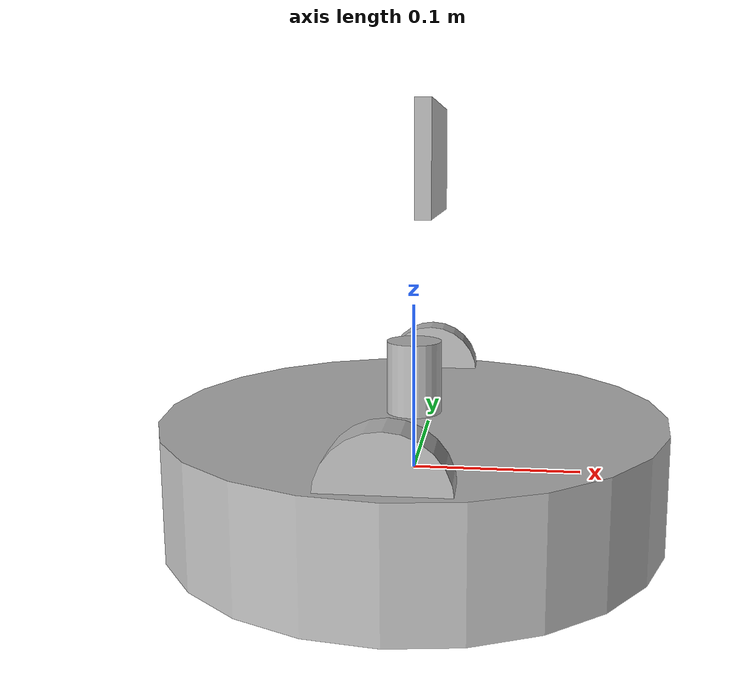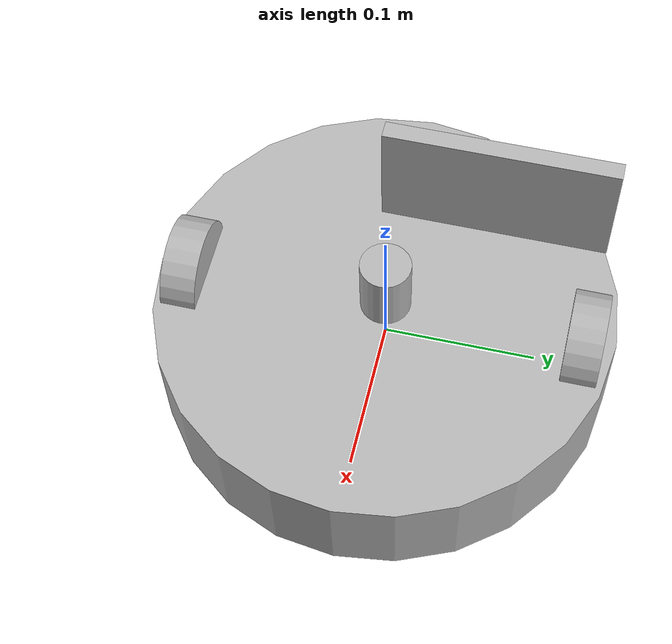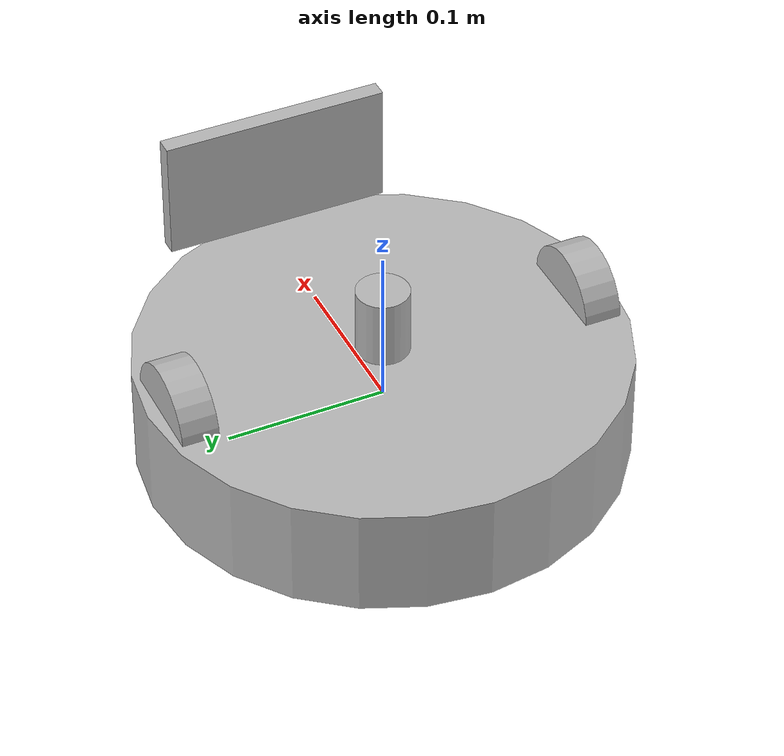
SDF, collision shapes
<?xml version="1.0" ?>
<sdf version="1.4">
  <model name="cranberry">
    <include>
       <uri>model://create</uri>
    </include>

    <include>
       <uri>model://smartphone</uri>
       <pose>0 0 0.15 0 0 0</pose>
    </include>

    <link name="base-link">
      <collision name="collision-base">
        <geometry>
          <cylinder>
            <radius>0.15</radius>
            <length>0.07</length>
          </cylinder>
        </geometry>
      </collision>
    </link>

    <joint name='create_collision' type='revolute'>
      <parent>create::base</parent>
      <child>base-link</child>
      <axis>
        <xyz>0 0 1</xyz>
        <limit>
          <lower>0</lower>
          <upper>0</upper>
        </limit>
      </axis>
    </joint>

    <joint name='create_phone' type='revolute'>
      <parent>create::base</parent>
      <child>smartphone::link</child>
      <axis>
        <xyz>0 0 1</xyz>
        <limit>
          <lower>0</lower>
          <upper>0</upper>
        </limit>
      </axis>
    </joint>

  </model>
</sdf>

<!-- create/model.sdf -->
<sdf version="1.5">
  <model name="create">
    <link name="base">
      <inertial>
        <pose>0.001453 -0.000453 0.029787 0 0 0</pose>
        <inertia>
          <ixx>0.058640</ixx>
          <ixy>0.000124</ixy>
          <ixz>0.000615</ixz>
          <iyy>0.058786</iyy>
          <iyz>0.000014</iyz>
          <izz>1.532440</izz>
        </inertia>
        <mass>2.234000</mass>
      </inertial>
      <collision name="base_collision">
        <pose>0 0 0.047800 0 0 0</pose>
        <geometry>
          <cylinder>
            <radius>0.016495</radius>
            <length>0.061163</length>
          </cylinder>
        </geometry>
      </collision>
      <visual name="base_visual">
        <pose>0 0 0.047800 0 0 0</pose>
        <geometry>
          <mesh>
            <uri>model://../model_source/models/create/meshes/create_body.dae</uri>
          </mesh>
        </geometry>
      </visual>
      <collision name="front_wheel_collision">
        <pose>0.130000 0 0.017000 0 1.570700 1.570700</pose>
        <geometry>
          <sphere>
            <radius>0.018000</radius>
          </sphere>
        </geometry>
        <surface>
          <friction>
            <ode>
              <mu>0</mu>
              <mu2>0</mu2>
              <fdir1>0 0 0</fdir1>
              <slip1>0</slip1>
              <slip2>0</slip2>
            </ode>
          </friction>
        </surface>
      </collision>
      <visual name="front_wheel_visual">
        <pose>0.130000 0 0.017000 0 1.570700 1.570700</pose>
        <geometry>
          <sphere>
            <radius>0.009000</radius>
          </sphere>
        </geometry>
      </visual>
      <collision name="rear_wheel_collision">
        <pose>-0.13 0 0.017 0 1.5707 1.5707</pose>
        <geometry>
          <sphere>
            <radius>0.015000</radius>
          </sphere>
        </geometry>
        <surface>
          <friction>
            <ode>
              <mu>0</mu>
              <mu2>0</mu2>
              <fdir1>0 0 0</fdir1>
              <slip1>0</slip1>
              <slip2>0</slip2>
            </ode>
          </friction>
        </surface>
      </collision>
      <visual name="rear_wheel_visual">
        <pose>-0.130000 0 0.017000 0 1.570700 1.570700</pose>
        <geometry>
          <sphere>
            <radius>0.007500</radius>
          </sphere>
        </geometry>
      </visual>
      <sensor name="left_cliff_sensor" type="ray">
        <pose>0.070000 0.140000 0.027000 0 1.570790 0</pose>
        <ray>
          <scan>
            <horizontal>
              <samples>1</samples>
              <resolution>1.000000</resolution>
              <min_angle>0</min_angle>
              <max_angle>0</max_angle>
            </horizontal>
          </scan>
          <range>
            <min>0.010000</min>
            <max>0.040000</max>
            <resolution>0.100000</resolution>
          </range>
        </ray>
      </sensor>
      <sensor name="leftfront_cliff_sensor" type="ray">
        <pose>0.150000 0.040000 0.027000 0 1.570790 0</pose>
        <ray>
          <scan>
            <horizontal>
              <samples>1</samples>
              <resolution>1.000000</resolution>
              <min_angle>0</min_angle>
              <max_angle>0</max_angle>
            </horizontal>
          </scan>
          <range>
            <min>0.010000</min>
            <max>0.040000</max>
            <resolution>0.100000</resolution>
          </range>
        </ray>
      </sensor>
      <sensor name="right_cliff_sensor" type="ray">
        <pose>0.070000 -0.140000 0.027000 0 1.570790 0</pose>
        <ray>
          <scan>
            <horizontal>
              <samples>1</samples>
              <resolution>1.000000</resolution>
              <min_angle>0</min_angle>
              <max_angle>0</max_angle>
            </horizontal>
          </scan>
          <range>
            <min>0.010000</min>
            <max>0.040000</max>
            <resolution>0.100000</resolution>
          </range>
        </ray>
      </sensor>
      <sensor name="rightfront_cliff_sensor" type="ray">
        <pose>0.150000 -0.040000 0.027000 0 1.570790 0</pose>
        <ray>
          <scan>
            <horizontal>
              <samples>1</samples>
              <resolution>1.000000</resolution>
              <min_angle>0</min_angle>
              <max_angle>0</max_angle>
            </horizontal>
          </scan>
          <range>
            <min>0.010000</min>
            <max>0.040000</max>
            <resolution>0.100000</resolution>
          </range>
        </ray>
      </sensor>
      <sensor name="wall_sensor" type="ray">
        <pose>0.090000 -0.120000 0.059000 0 0 -1.000000</pose>
        <ray>
          <scan>
            <horizontal>
              <samples>1</samples>
              <resolution>1.000000</resolution>
              <min_angle>0</min_angle>
              <max_angle>0</max_angle>
            </horizontal>
          </scan>
          <range>
            <min>0.016000</min>
            <max>0.040000</max>
            <resolution>0.100000</resolution>
          </range>
        </ray>
      </sensor>
    </link>
    <link name="left_wheel">
      <pose>0 0.130000 0.032000 0 0 0</pose>
      <inertial>
        <inertia>
          <ixx>0.001000</ixx>
          <ixy>0</ixy>
          <ixz>0</ixz>
          <iyy>0.001000</iyy>
          <iyz>0</iyz>
          <izz>0.001000</izz>
        </inertia>
        <mass>0.010000</mass>
      </inertial>
      <collision name="collision">
        <pose>0 0 0 0 1.570700 1.570700</pose>
        <geometry>
          <cylinder>
            <radius>0.033000</radius>
            <length>0.023000</length>
          </cylinder>
        </geometry>
        <surface>
          <friction>
            <ode>
              <mu>10</mu>
              <mu2>10</mu2>
              <fdir1>0 0 0</fdir1>
              <slip1>0</slip1>
              <slip2>0</slip2>
            </ode>
          </friction>
        </surface>
      </collision>
      <visual name="visual">
        <pose>0 0 0 0 1.570700 1.570700</pose>
        <geometry>
          <cylinder>
            <radius>0.033000</radius>
            <length>0.023000</length>
          </cylinder>
        </geometry>
      </visual>
    </link>
    <link name="right_wheel">
      <pose>0 -0.130000 0.032000 0 0 0</pose>
      <inertial>
        <inertia>
          <ixx>0.001000</ixx>
          <ixy>0</ixy>
          <ixz>0</ixz>
          <iyy>0.001000</iyy>
          <iyz>0</iyz>
          <izz>0.001000</izz>
        </inertia>
        <mass>0.010000</mass>
      </inertial>
      <collision name="collision">
        <pose>0 0 0 0 1.570700 1.570700</pose>
        <geometry>
          <cylinder>
            <radius>0.033000</radius>
            <length>0.023000</length>
          </cylinder>
        </geometry>
        <surface>
          <friction>
            <ode>
              <mu>10</mu>
              <mu2>10</mu2>
              <fdir1>0 0 0</fdir1>
              <slip1>0</slip1>
              <slip2>0</slip2>
            </ode>
          </friction>
        </surface>
      </collision>
      <visual name="visual">
        <pose>0 0 0 0 1.570700 1.570700</pose>
        <geometry>
          <cylinder>
            <radius>0.033000</radius>
            <length>0.023000</length>
          </cylinder>
        </geometry>
      </visual>
    </link>
    <joint name="left_wheel" type="revolute">
      <parent>base</parent>
      <child>left_wheel</child>
      <axis>
        <xyz>0 1 0</xyz>
        <use_parent_model_frame>true</use_parent_model_frame>
      </axis>
    </joint>
    <joint name="right_wheel" type="revolute">
      <parent>base</parent>
      <child>right_wheel</child>
      <axis>
        <xyz>0 1 0</xyz>
        <use_parent_model_frame>true</use_parent_model_frame>
      </axis>
    </joint>
  </model>
</sdf>

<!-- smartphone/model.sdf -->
<sdf version="1.4">
  <model name="smartphone">
    <link name="link">
      <pose>0.005 0.065 0.035 0 0 0</pose>
      <inertial>
        <mass>0.2</mass>
      </inertial>
      <collision name="collision">
        <geometry>
          <box>
            <size>0.01 0.13 0.07</size>
          </box>
        </geometry>
      </collision>
      <visual name="visual">
        <geometry>
          <box>
            <size>0.01 0.13 0.07</size>
          </box>
        </geometry>
      </visual>
      <sensor name="camera" type="camera">
        <camera>
          <horizontal_fov>0.864</horizontal_fov>
          <image>
            <width>340</width>
            <height>200</height>
          </image>
          <clip>
            <near>0.1</near>
            <far>100</far>
          </clip>
        </camera>
        <plugin name="smartphone_camera_ros" filename="libgazebo_ros_camera.so">
          <alwaysOn>1</alwaysOn>
          <updateRate>1.0</updateRate>
          <cameraName>SmartphoneCamera</cameraName>
          <imageTopicName>/smartphone/camera/image</imageTopicName>
          <cameraInfoTopicName>/smartphone/camera/info</cameraInfoTopicName>
          <frameName>phone</frameName>
        </plugin>
        <always_on>1</always_on>
        <update_rate>1</update_rate>
        <visualize>true</visualize>
      </sensor>
    </link>
  </model>
</sdf>
